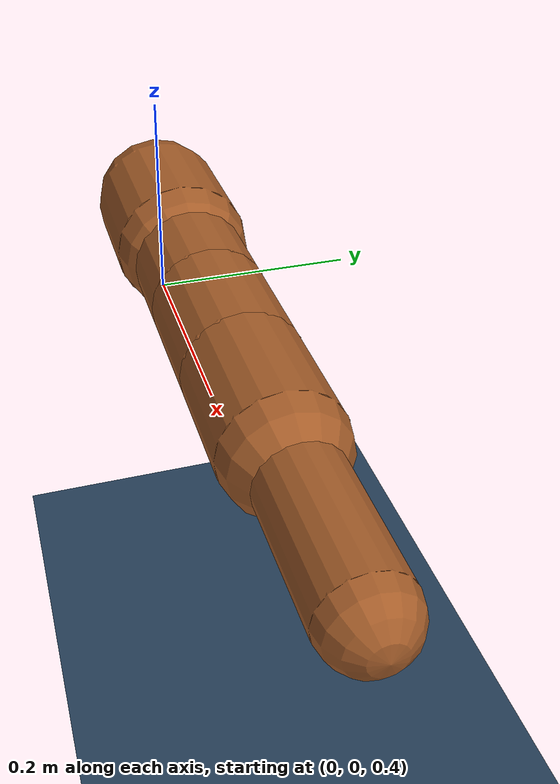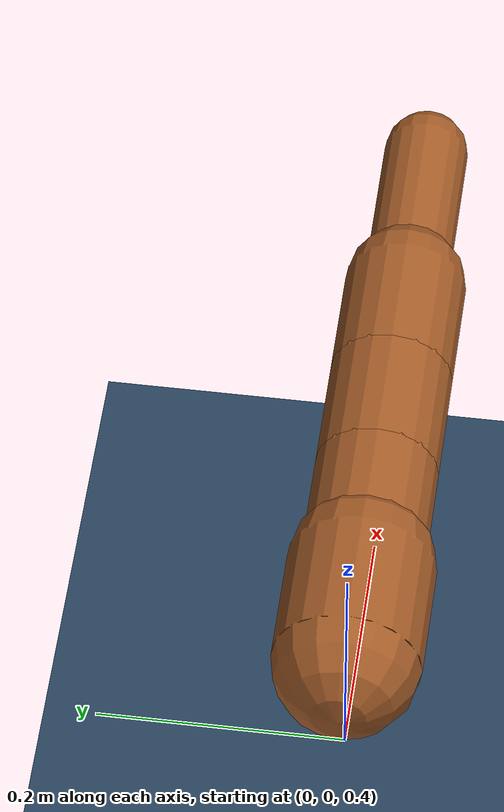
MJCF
<mujoco model="Walker">
    <option timestep="0.01"/>

    <asset>
        <texture type="skybox" builtin="gradient" rgb1=".3 .5 .7" rgb2="0 0 0" width="512" height="512"/>
        <texture name="body" type="cube" builtin="flat" mark="cross" width="127" height="1278"
                 rgb1="0.8 0.6 0.4" rgb2="0.8 0.6 0.4" markrgb="1 1 1" random="0.01"/>
        <material name="body" texture="body" texuniform="true" rgba="0.8 0.6 .4 1"/>
        <texture name="grid" type="2d" builtin="checker" width="512" height="512" rgb1=".1 .2 .3" rgb2=".2 .3 .4"/>
        <material name="grid" texture="grid" texrepeat="1 1" texuniform="true" reflectance=".2"/>

    </asset>

    <default>
        <motor ctrlrange="-1 1" ctrllimited="true"/>
        <default class="body">
            <geom type="capsule" condim="6" friction=".7" solimp=".9 .99 .003" solref=".015 1" material="body"/>
            <joint type="hinge" damping=".2" stiffness="1" armature=".01" limited="true" solimplimit="0 .99 .01"/>
          </default>
    </default>

    <visual>
        <map force="0.1" zfar="30"/>
        <rgba haze="0.9 0.9 0.15 1"/>
        <quality shadowsize="4096"/>
        <global offwidth="800" offheight="800"/>
    </visual>

    <worldbody>
        <geom name="floor" size="0 0 .05" type="plane" material="grid" condim="3"/>
        <light name="spotlight" mode="targetbodycom" target="head"
            diffuse=".8 .8 .8" specular="0.3 0.3 0.3" pos="0 -20 4" cutoff="10"/>

        <body name="head" pos="0 0 0.5" childclass="body">
            <light name="top" pos="0 0 2" mode="trackcom"/>
            <camera name="back" pos="-3 0 1" xyaxes="0 -1 0 1 0 2" mode="trackcom"/>
            <camera name="side" pos="0 -3 1" xyaxes="1 0 0 0 1 2" mode="trackcom"/>
            <freejoint name="root"/>
            <geom name="head" fromto="0 0 0 0.1 0 0" size=".06"/>

            <body name="leg1" pos="0.1 0 0 ">
                <geom name="leg1" fromto="0 0 0 0.1 0 0" size=".05"/>
                <joint name="leg1_hinge" pos="0 0 0" axis="0 1 0" range="-45 45"/>

                <body name="leg2" pos="0.1 0 0 ">
                    <geom name="leg2" fromto="0 0 0 0.1 0 0" size=".05"/>
                    <joint name="leg2_hinge" pos="0 0 0" axis="0 1 0" range="-45 45"/>

                    <body name="finlink" pos="0.1 0 0 ">
                        <geom name="finlink" fromto="0 0 0 0.1 0 0" size=".05"/>
                        <joint name="finhinge" pos="0 0 0" axis="0 1 0" range="-45 45"/>

                        <body name="tail" pos="0.1 0 0 ">
                            <geom name="tail" fromto="0 0 0 0.15 0 0" size=".035"/>
                            <joint name="tailhinge" pos="0 0 0" axis="0 1 0" range="-45 45"/>
                        </body>

                    </body>
                </body>
            </body>
        </body>

    </worldbody>

    <actuator>
        <motor name="leg1_hinge"  gear="40"  joint="leg1_hinge"/>
        <motor name="leg2_hinge"  gear="40"  joint="leg2_hinge"/>
        <motor name="finhinge"  gear="40"  joint="finhinge"/>
        <motor name="tailhinge"  gear="40"  joint="tailhinge"/>
    </actuator>

</mujoco>
